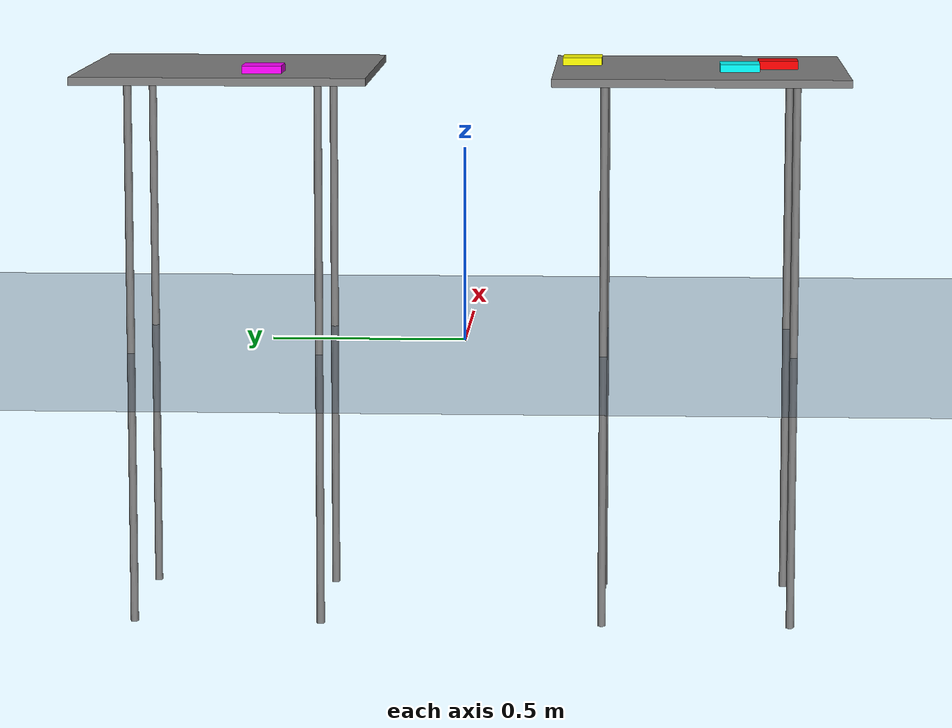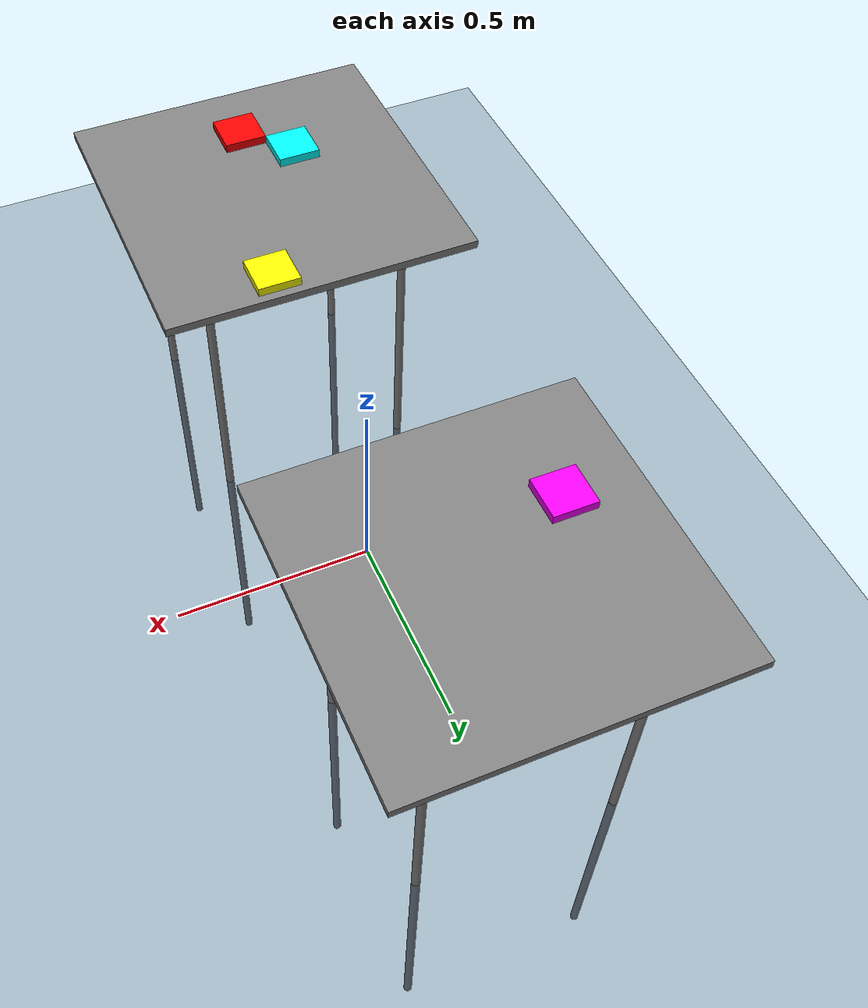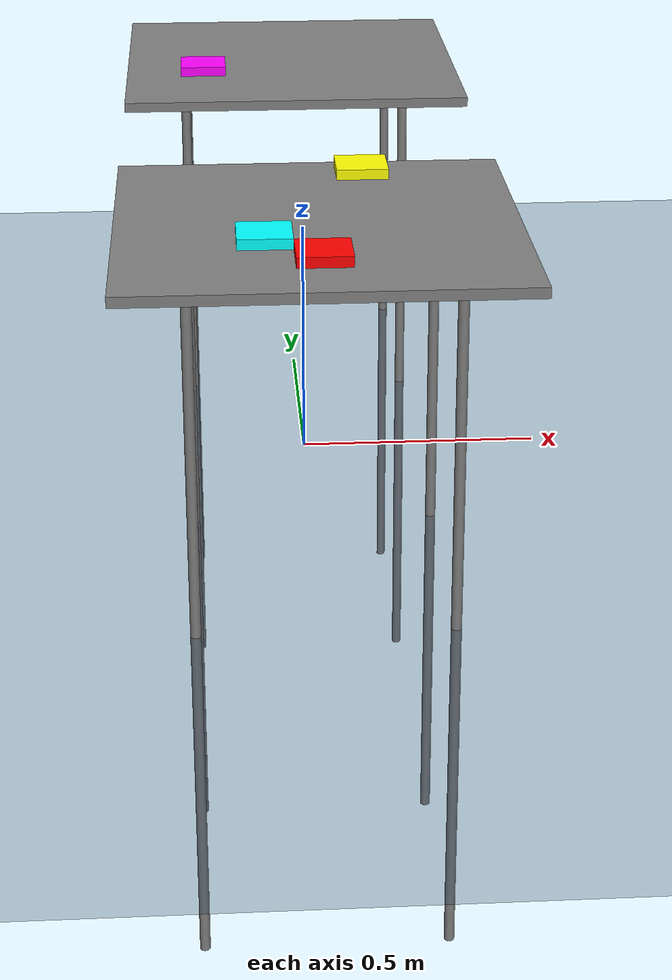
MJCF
<mujoco model="tableworld">
    <compiler eulerseq="XYZ"/>
    <statistic center="0.3 0 0.4" extent="0.8"/>

    <visual>
        <headlight diffuse="0.6 0.6 0.6" ambient="0.1 0.1 0.1" specular="0 0 0"/>
        <rgba haze="0.15 0.25 0.35 1"/>
        <global azimuth="120" elevation="-20"/>
    </visual>

    <asset>
        <texture type="skybox" builtin="gradient" rgb1="0.3 0.5 0.7" rgb2="0 0 0" width="512" height="3072"/>
        <texture type="2d" name="groundplane" builtin="checker" mark="edge" rgb1="0.2 0.3 0.4" rgb2="0.1 0.2 0.3"
                 markrgb="0.8 0.8 0.8" width="300" height="300"/>
        <material name="groundplane" texture="groundplane" texuniform="true" texrepeat="5 5" reflectance="0.2"/>

    </asset>

    <worldbody>
        <light pos="0 0 1.5" dir="0 0 -1" directional="true"/>
        <geom name="floor" pos="0.0 0.0 0.0" size="0 0 0.05" type="plane" material="groundplane"/>

        <body name="table_left" pos="0.0 -0.6 0">
            <geom name="table_left_top" type="box" size=".37 .37 .01" pos="0 0 .7"/>
            <geom name="table_left_leg_1" type="cylinder" size=".01 .7" pos=".24 -.24 -.0" euler="0 0 0"/>
            <geom name="table_left_leg_2" type="cylinder" size=".01 .7" pos=".24 .24 -.0" euler="0 0 0"/>
            <geom name="table_left_leg_3" type="cylinder" size=".01 .7" pos="-.24 -.24 -.0" euler="0 0 0"/>
            <geom name="table_left_leg_4" type="cylinder" size=".01 .7" pos="-.24 .24 -.0" euler="0 0 0"/>
        </body>

        <body name="table_right" pos="0 0.6 0">
            <geom name="table_right_top" type="box" size=".37 .37 .01" pos="0 0 .7"/>
            <geom name="table_right_leg_1" type="cylinder" size=".01 .7" pos=".24 -.24 -.0" euler="0 0 0"/>
            <geom name="table_right_leg_2" type="cylinder" size=".01 .7" pos=".24 .24 -.0" euler="0 0 0"/>
            <geom name="table_right_leg_3" type="cylinder" size=".01 .7" pos="-.24 -.24 -.0" euler="0 0 0"/>
            <geom name="table_right_leg_4" type="cylinder" size=".01 .7" pos="-.24 .24 -.0" euler="0 0 0"/>
        </body>

        <body name="red box" pos="0 -0.8 0.72" quat="0. 0. 1. 0.">
            <freejoint name="red box"/>
            <geom type="box" size=".05 .05 .01" rgba="1 0 0 1"/>
        </body>

        <body name="yellow box" pos="0.1 -0.3 0.72">
            <freejoint/>
            <geom type="box" size=".05 .05 .01" rgba="1 1 0 1"/>
        </body>

        <body name="cyan box" pos="-0.1 -0.7 0.72">
            <freejoint/>
            <geom type="box" size=".05 .05 .01" rgba="0 1 1 1"/>
        </body>

        <body name="purple box" pos="-0.2 0.5 0.72">
            <freejoint/>
            <geom type="box" size=".05 .05 .01" rgba="1 0 1 1"/>
        </body>

        <camera name="top-right" pos="2.5 1.2 2.5" euler="1 0 2"/>

    </worldbody>

</mujoco>
